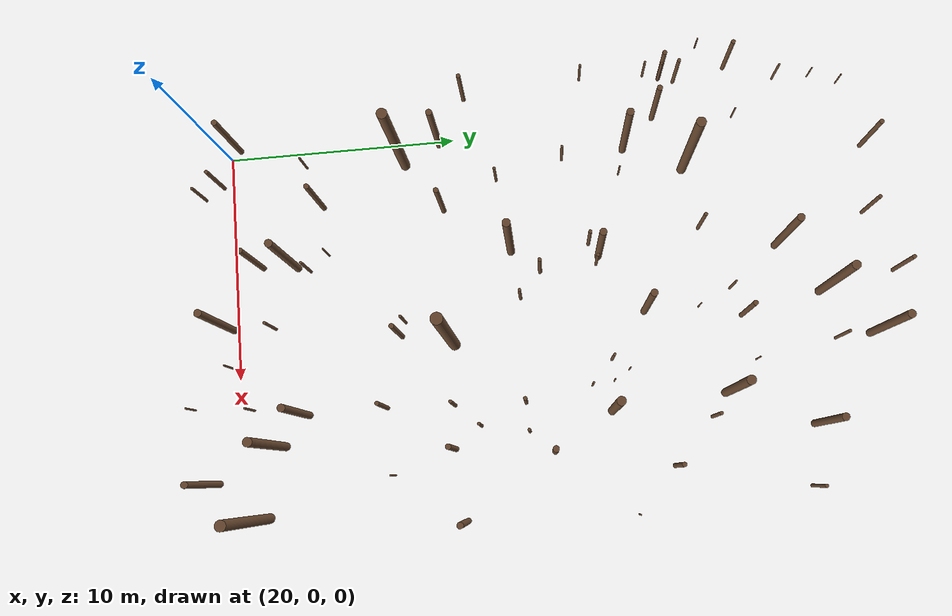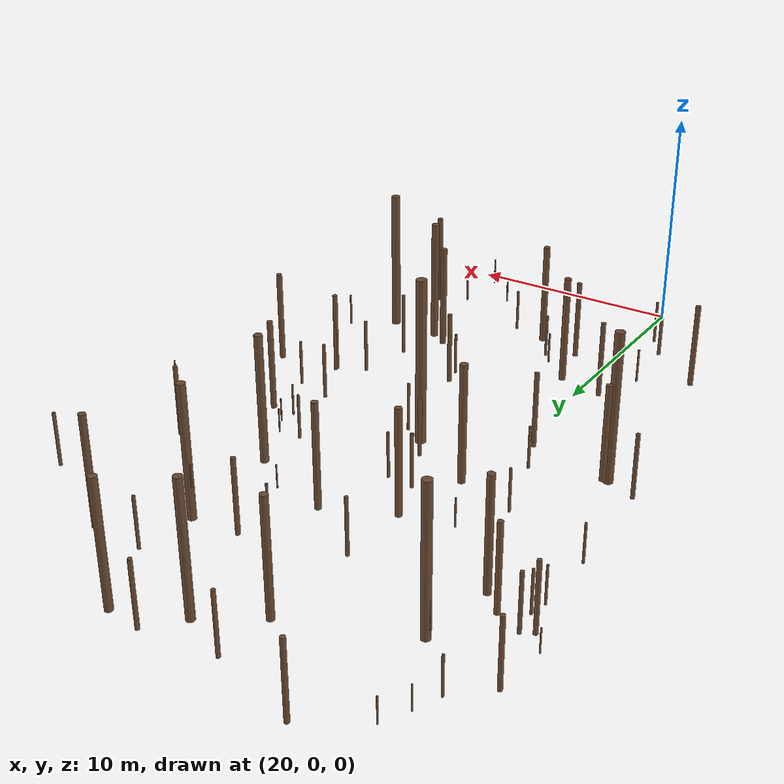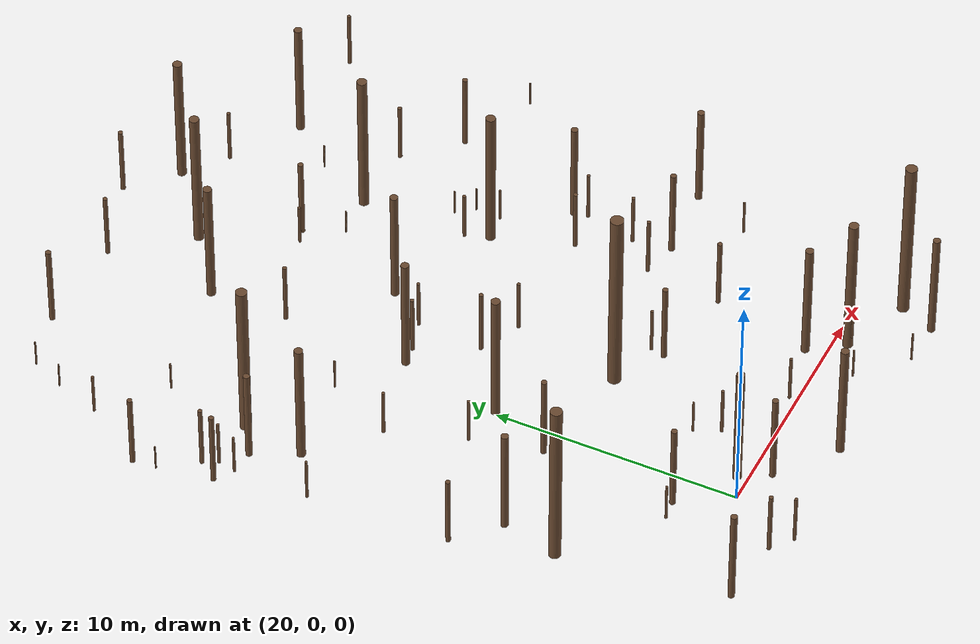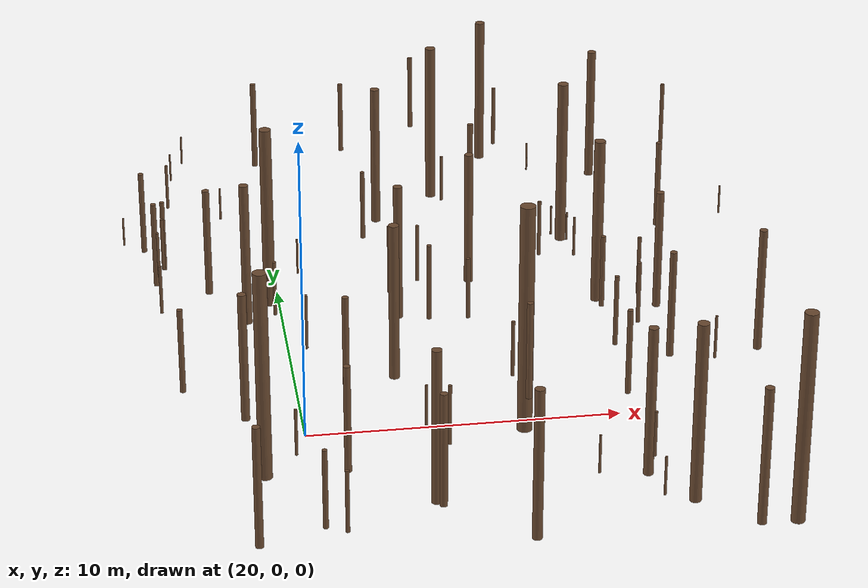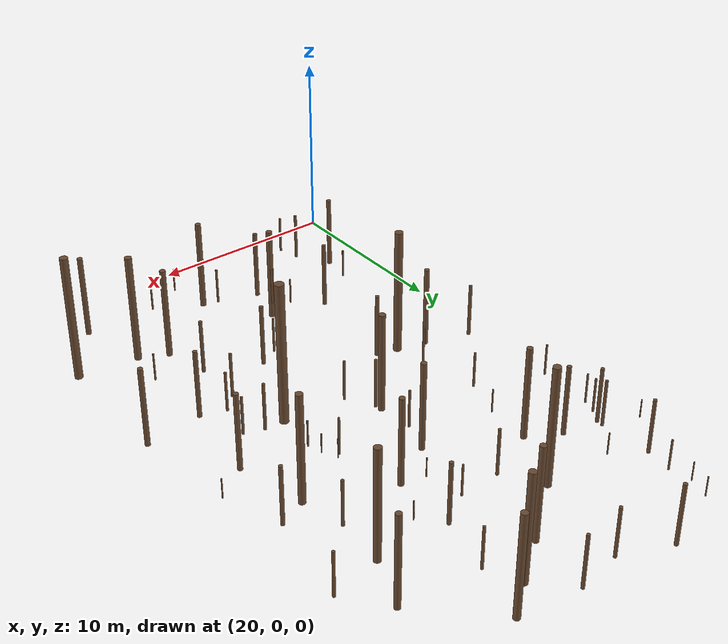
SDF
<sdf version="1.10">
 <model name="lehrforst_trees">
  <static>true</static>
  <link name="tree_0003">
   <pose>28.569 8.946 -1.156 3.14159 0 0</pose>
   <visual name="visual">
    <geometry><cylinder><radius>0.273</radius><length>8.736</length></cylinder></geometry>
    <material>
     <ambient>0.42 0.29 0.19 1</ambient>
     <diffuse>0.42 0.29 0.19 1</diffuse>
     <specular>0.42 0.29 0.19 1</specular>
    </material>
   </visual>
   <collision name="collision">
    <geometry><cylinder><radius>0.273</radius><length>8.736</length></cylinder></geometry>
   </collision>
  </link>
  <link name="tree_0011">
   <pose>19.209 7.13 -1.709 3.14159 0 0</pose>
   <visual name="visual">
    <geometry><cylinder><radius>0.246</radius><length>7.872</length></cylinder></geometry>
    <material>
     <ambient>0.42 0.29 0.19 1</ambient>
     <diffuse>0.42 0.29 0.19 1</diffuse>
     <specular>0.42 0.29 0.19 1</specular>
    </material>
   </visual>
   <collision name="collision">
    <geometry><cylinder><radius>0.246</radius><length>7.872</length></cylinder></geometry>
   </collision>
  </link>
  <link name="tree_0015">
   <pose>36.035 -0.141 -0.581 3.14159 0 0</pose>
   <visual name="visual">
    <geometry><cylinder><radius>0.239</radius><length>7.648</length></cylinder></geometry>
    <material>
     <ambient>0.42 0.29 0.19 1</ambient>
     <diffuse>0.42 0.29 0.19 1</diffuse>
     <specular>0.42 0.29 0.19 1</specular>
    </material>
   </visual>
   <collision name="collision">
    <geometry><cylinder><radius>0.239</radius><length>7.648</length></cylinder></geometry>
   </collision>
  </link>
  <link name="tree_0026">
   <pose>20.56 21.103 -2.404 3.14159 0 0</pose>
   <visual name="visual">
    <geometry><cylinder><radius>0.232</radius><length>7.424</length></cylinder></geometry>
    <material>
     <ambient>0.42 0.29 0.19 1</ambient>
     <diffuse>0.42 0.29 0.19 1</diffuse>
     <specular>0.42 0.29 0.19 1</specular>
    </material>
   </visual>
   <collision name="collision">
    <geometry><cylinder><radius>0.232</radius><length>7.424</length></cylinder></geometry>
   </collision>
  </link>
  <link name="tree_0085">
   <pose>32.181 21.663 -1.035 3.14159 0 0</pose>
   <visual name="visual">
    <geometry><cylinder><radius>0.207</radius><length>6.624</length></cylinder></geometry>
    <material>
     <ambient>0.42 0.29 0.19 1</ambient>
     <diffuse>0.42 0.29 0.19 1</diffuse>
     <specular>0.42 0.29 0.19 1</specular>
    </material>
   </visual>
   <collision name="collision">
    <geometry><cylinder><radius>0.207</radius><length>6.624</length></cylinder></geometry>
   </collision>
  </link>
  <link name="tree_0099">
   <pose>32.546 16.219 -1.05 3.14159 0 0</pose>
   <visual name="visual">
    <geometry><cylinder><radius>0.204</radius><length>6.528</length></cylinder></geometry>
    <material>
     <ambient>0.42 0.29 0.19 1</ambient>
     <diffuse>0.42 0.29 0.19 1</diffuse>
     <specular>0.42 0.29 0.19 1</specular>
    </material>
   </visual>
   <collision name="collision">
    <geometry><cylinder><radius>0.204</radius><length>6.528</length></cylinder></geometry>
   </collision>
  </link>
  <link name="tree_0100">
   <pose>32.823 0.866 -0.689 3.14159 0 0</pose>
   <visual name="visual">
    <geometry><cylinder><radius>0.204</radius><length>6.528</length></cylinder></geometry>
    <material>
     <ambient>0.42 0.29 0.19 1</ambient>
     <diffuse>0.42 0.29 0.19 1</diffuse>
     <specular>0.42 0.29 0.19 1</specular>
    </material>
   </visual>
   <collision name="collision">
    <geometry><cylinder><radius>0.204</radius><length>6.528</length></cylinder></geometry>
   </collision>
  </link>
  <link name="tree_0107">
   <pose>27.715 26.8 -1.274 3.14159 0 0</pose>
   <visual name="visual">
    <geometry><cylinder><radius>0.203</radius><length>6.496</length></cylinder></geometry>
    <material>
     <ambient>0.42 0.29 0.19 1</ambient>
     <diffuse>0.42 0.29 0.19 1</diffuse>
     <specular>0.42 0.29 0.19 1</specular>
    </material>
   </visual>
   <collision name="collision">
    <geometry><cylinder><radius>0.203</radius><length>6.496</length></cylinder></geometry>
   </collision>
  </link>
  <link name="tree_0154">
   <pose>24.334 12.093 -1.757 3.14159 0 0</pose>
   <visual name="visual">
    <geometry><cylinder><radius>0.190</radius><length>6.080</length></cylinder></geometry>
    <material>
     <ambient>0.42 0.29 0.19 1</ambient>
     <diffuse>0.42 0.29 0.19 1</diffuse>
     <specular>0.42 0.29 0.19 1</specular>
    </material>
   </visual>
   <collision name="collision">
    <geometry><cylinder><radius>0.190</radius><length>6.080</length></cylinder></geometry>
   </collision>
  </link>
  <link name="tree_0164">
   <pose>30.04 28.734 -0.795 3.14159 0 0</pose>
   <visual name="visual">
    <geometry><cylinder><radius>0.187</radius><length>5.984</length></cylinder></geometry>
    <material>
     <ambient>0.42 0.29 0.19 1</ambient>
     <diffuse>0.42 0.29 0.19 1</diffuse>
     <specular>0.42 0.29 0.19 1</specular>
    </material>
   </visual>
   <collision name="collision">
    <geometry><cylinder><radius>0.187</radius><length>5.984</length></cylinder></geometry>
   </collision>
  </link>
  <link name="tree_0205">
   <pose>19.484 18.128 -2.468 3.14159 0 0</pose>
   <visual name="visual">
    <geometry><cylinder><radius>0.179</radius><length>5.728</length></cylinder></geometry>
    <material>
     <ambient>0.42 0.29 0.19 1</ambient>
     <diffuse>0.42 0.29 0.19 1</diffuse>
     <specular>0.42 0.29 0.19 1</specular>
    </material>
   </visual>
   <collision name="collision">
    <geometry><cylinder><radius>0.179</radius><length>5.728</length></cylinder></geometry>
   </collision>
  </link>
  <link name="tree_0208">
   <pose>25.237 24.976 -1.773 3.14159 0 0</pose>
   <visual name="visual">
    <geometry><cylinder><radius>0.179</radius><length>5.728</length></cylinder></geometry>
    <material>
     <ambient>0.42 0.29 0.19 1</ambient>
     <diffuse>0.42 0.29 0.19 1</diffuse>
     <specular>0.42 0.29 0.19 1</specular>
    </material>
   </visual>
   <collision name="collision">
    <geometry><cylinder><radius>0.179</radius><length>5.728</length></cylinder></geometry>
   </collision>
  </link>
  <link name="tree_0231">
   <pose>24.409 1.859 -1.091 3.14159 0 0</pose>
   <visual name="visual">
    <geometry><cylinder><radius>0.176</radius><length>5.632</length></cylinder></geometry>
    <material>
     <ambient>0.42 0.29 0.19 1</ambient>
     <diffuse>0.42 0.29 0.19 1</diffuse>
     <specular>0.42 0.29 0.19 1</specular>
    </material>
   </visual>
   <collision name="collision">
    <geometry><cylinder><radius>0.176</radius><length>5.632</length></cylinder></geometry>
   </collision>
  </link>
  <link name="tree_0259">
   <pose>31.504 2.118 -0.859 3.14159 0 0</pose>
   <visual name="visual">
    <geometry><cylinder><radius>0.170</radius><length>5.440</length></cylinder></geometry>
    <material>
     <ambient>0.42 0.29 0.19 1</ambient>
     <diffuse>0.42 0.29 0.19 1</diffuse>
     <specular>0.42 0.29 0.19 1</specular>
    </material>
   </visual>
   <collision name="collision">
    <geometry><cylinder><radius>0.170</radius><length>5.440</length></cylinder></geometry>
   </collision>
  </link>
  <link name="tree_0263">
   <pose>27.186 -1.236 -0.91 3.14159 0 0</pose>
   <visual name="visual">
    <geometry><cylinder><radius>0.169</radius><length>5.408</length></cylinder></geometry>
    <material>
     <ambient>0.42 0.29 0.19 1</ambient>
     <diffuse>0.42 0.29 0.19 1</diffuse>
     <specular>0.42 0.29 0.19 1</specular>
    </material>
   </visual>
   <collision name="collision">
    <geometry><cylinder><radius>0.169</radius><length>5.408</length></cylinder></geometry>
   </collision>
  </link>
  <link name="tree_0270">
   <pose>25.022 16.303 -1.87 3.14159 0 0</pose>
   <visual name="visual">
    <geometry><cylinder><radius>0.168</radius><length>5.376</length></cylinder></geometry>
    <material>
     <ambient>0.42 0.29 0.19 1</ambient>
     <diffuse>0.42 0.29 0.19 1</diffuse>
     <specular>0.42 0.29 0.19 1</specular>
    </material>
   </visual>
   <collision name="collision">
    <geometry><cylinder><radius>0.168</radius><length>5.376</length></cylinder></geometry>
   </collision>
  </link>
  <link name="tree_0273">
   <pose>34.035 25.412 -0.66 3.14159 0 0</pose>
   <visual name="visual">
    <geometry><cylinder><radius>0.167</radius><length>5.344</length></cylinder></geometry>
    <material>
     <ambient>0.42 0.29 0.19 1</ambient>
     <diffuse>0.42 0.29 0.19 1</diffuse>
     <specular>0.42 0.29 0.19 1</specular>
    </material>
   </visual>
   <collision name="collision">
    <geometry><cylinder><radius>0.167</radius><length>5.344</length></cylinder></geometry>
   </collision>
  </link>
  <link name="tree_0281">
   <pose>27.969 18.211 -1.557 3.14159 0 0</pose>
   <visual name="visual">
    <geometry><cylinder><radius>0.165</radius><length>5.280</length></cylinder></geometry>
    <material>
     <ambient>0.42 0.29 0.19 1</ambient>
     <diffuse>0.42 0.29 0.19 1</diffuse>
     <specular>0.42 0.29 0.19 1</specular>
    </material>
   </visual>
   <collision name="collision">
    <geometry><cylinder><radius>0.165</radius><length>5.280</length></cylinder></geometry>
   </collision>
  </link>
  <link name="tree_0347">
   <pose>34.279 -2.021 -0.739 3.14159 0 0</pose>
   <visual name="visual">
    <geometry><cylinder><radius>0.153</radius><length>4.896</length></cylinder></geometry>
    <material>
     <ambient>0.42 0.29 0.19 1</ambient>
     <diffuse>0.42 0.29 0.19 1</diffuse>
     <specular>0.42 0.29 0.19 1</specular>
    </material>
   </visual>
   <collision name="collision">
    <geometry><cylinder><radius>0.153</radius><length>4.896</length></cylinder></geometry>
   </collision>
  </link>
  <link name="tree_0351">
   <pose>18.712 9.028 -1.942 3.14159 0 0</pose>
   <visual name="visual">
    <geometry><cylinder><radius>0.153</radius><length>4.896</length></cylinder></geometry>
    <material>
     <ambient>0.42 0.29 0.19 1</ambient>
     <diffuse>0.42 0.29 0.19 1</diffuse>
     <specular>0.42 0.29 0.19 1</specular>
    </material>
   </visual>
   <collision name="collision">
    <geometry><cylinder><radius>0.153</radius><length>4.896</length></cylinder></geometry>
   </collision>
  </link>
  <link name="tree_0394">
   <pose>36.95 9.149 -0.682 3.14159 0 0</pose>
   <visual name="visual">
    <geometry><cylinder><radius>0.145</radius><length>4.640</length></cylinder></geometry>
    <material>
     <ambient>0.42 0.29 0.19 1</ambient>
     <diffuse>0.42 0.29 0.19 1</diffuse>
     <specular>0.42 0.29 0.19 1</specular>
    </material>
   </visual>
   <collision name="collision">
    <geometry><cylinder><radius>0.145</radius><length>4.640</length></cylinder></geometry>
   </collision>
  </link>
  <link name="tree_0410">
   <pose>34.213 13.357 -0.952 3.14159 0 0</pose>
   <visual name="visual">
    <geometry><cylinder><radius>0.143</radius><length>4.576</length></cylinder></geometry>
    <material>
     <ambient>0.42 0.29 0.19 1</ambient>
     <diffuse>0.42 0.29 0.19 1</diffuse>
     <specular>0.42 0.29 0.19 1</specular>
    </material>
   </visual>
   <collision name="collision">
    <geometry><cylinder><radius>0.143</radius><length>4.576</length></cylinder></geometry>
   </collision>
  </link>
  <link name="tree_0454">
   <pose>18.416 -0.568 -1.404 3.14159 0 0</pose>
   <visual name="visual">
    <geometry><cylinder><radius>0.136</radius><length>4.352</length></cylinder></geometry>
    <material>
     <ambient>0.42 0.29 0.19 1</ambient>
     <diffuse>0.42 0.29 0.19 1</diffuse>
     <specular>0.42 0.29 0.19 1</specular>
    </material>
   </visual>
   <collision name="collision">
    <geometry><cylinder><radius>0.136</radius><length>4.352</length></cylinder></geometry>
   </collision>
  </link>
  <link name="tree_0459">
   <pose>18.152 19.706 -2.611 3.14159 0 0</pose>
   <visual name="visual">
    <geometry><cylinder><radius>0.135</radius><length>4.320</length></cylinder></geometry>
    <material>
     <ambient>0.42 0.29 0.19 1</ambient>
     <diffuse>0.42 0.29 0.19 1</diffuse>
     <specular>0.42 0.29 0.19 1</specular>
    </material>
   </visual>
   <collision name="collision">
    <geometry><cylinder><radius>0.135</radius><length>4.320</length></cylinder></geometry>
   </collision>
  </link>
  <link name="tree_0505">
   <pose>24.427 0.398 -1.107 3.14159 0 0</pose>
   <visual name="visual">
    <geometry><cylinder><radius>0.128</radius><length>4.096</length></cylinder></geometry>
    <material>
     <ambient>0.42 0.29 0.19 1</ambient>
     <diffuse>0.42 0.29 0.19 1</diffuse>
     <specular>0.42 0.29 0.19 1</specular>
    </material>
   </visual>
   <collision name="collision">
    <geometry><cylinder><radius>0.128</radius><length>4.096</length></cylinder></geometry>
   </collision>
  </link>
  <link name="tree_0519">
   <pose>33.703 8.857 -0.868 3.14159 0 0</pose>
   <visual name="visual">
    <geometry><cylinder><radius>0.126</radius><length>4.032</length></cylinder></geometry>
    <material>
     <ambient>0.42 0.29 0.19 1</ambient>
     <diffuse>0.42 0.29 0.19 1</diffuse>
     <specular>0.42 0.29 0.19 1</specular>
    </material>
   </visual>
   <collision name="collision">
    <geometry><cylinder><radius>0.126</radius><length>4.032</length></cylinder></geometry>
   </collision>
  </link>
  <link name="tree_0534">
   <pose>21.675 3.348 -1.422 3.14159 0 0</pose>
   <visual name="visual">
    <geometry><cylinder><radius>0.123</radius><length>3.936</length></cylinder></geometry>
    <material>
     <ambient>0.42 0.29 0.19 1</ambient>
     <diffuse>0.42 0.29 0.19 1</diffuse>
     <specular>0.42 0.29 0.19 1</specular>
    </material>
   </visual>
   <collision name="collision">
    <geometry><cylinder><radius>0.123</radius><length>3.936</length></cylinder></geometry>
   </collision>
  </link>
  <link name="tree_0545">
   <pose>22.259 9.05 -1.795 3.14159 0 0</pose>
   <visual name="visual">
    <geometry><cylinder><radius>0.120</radius><length>3.840</length></cylinder></geometry>
    <material>
     <ambient>0.42 0.29 0.19 1</ambient>
     <diffuse>0.42 0.29 0.19 1</diffuse>
     <specular>0.42 0.29 0.19 1</specular>
    </material>
   </visual>
   <collision name="collision">
    <geometry><cylinder><radius>0.120</radius><length>3.840</length></cylinder></geometry>
   </collision>
  </link>
  <link name="tree_0576">
   <pose>28.706 22.664 -1.463 3.14159 0 0</pose>
   <visual name="visual">
    <geometry><cylinder><radius>0.114</radius><length>3.648</length></cylinder></geometry>
    <material>
     <ambient>0.42 0.29 0.19 1</ambient>
     <diffuse>0.42 0.29 0.19 1</diffuse>
     <specular>0.42 0.29 0.19 1</specular>
    </material>
   </visual>
   <collision name="collision">
    <geometry><cylinder><radius>0.114</radius><length>3.648</length></cylinder></geometry>
   </collision>
  </link>
  <link name="tree_0582">
   <pose>28.302 6.736 -1.18 3.14159 0 0</pose>
   <visual name="visual">
    <geometry><cylinder><radius>0.114</radius><length>3.648</length></cylinder></geometry>
    <material>
     <ambient>0.42 0.29 0.19 1</ambient>
     <diffuse>0.42 0.29 0.19 1</diffuse>
     <specular>0.42 0.29 0.19 1</specular>
    </material>
   </visual>
   <collision name="collision">
    <geometry><cylinder><radius>0.114</radius><length>3.648</length></cylinder></geometry>
   </collision>
  </link>
  <link name="tree_0584">
   <pose>20.75 29.673 -2.186 3.14159 0 0</pose>
   <visual name="visual">
    <geometry><cylinder><radius>0.114</radius><length>3.648</length></cylinder></geometry>
    <material>
     <ambient>0.42 0.29 0.19 1</ambient>
     <diffuse>0.42 0.29 0.19 1</diffuse>
     <specular>0.42 0.29 0.19 1</specular>
    </material>
   </visual>
   <collision name="collision">
    <geometry><cylinder><radius>0.114</radius><length>3.648</length></cylinder></geometry>
   </collision>
  </link>
  <link name="tree_0639">
   <pose>35.35 18.68 -0.812 3.14159 0 0</pose>
   <visual name="visual">
    <geometry><cylinder><radius>0.107</radius><length>3.424</length></cylinder></geometry>
    <material>
     <ambient>0.42 0.29 0.19 1</ambient>
     <diffuse>0.42 0.29 0.19 1</diffuse>
     <specular>0.42 0.29 0.19 1</specular>
    </material>
   </visual>
   <collision name="collision">
    <geometry><cylinder><radius>0.107</radius><length>3.424</length></cylinder></geometry>
   </collision>
  </link>
  <link name="tree_0641">
   <pose>16.179 20.229 -2.845 3.14159 0 0</pose>
   <visual name="visual">
    <geometry><cylinder><radius>0.107</radius><length>3.424</length></cylinder></geometry>
    <material>
     <ambient>0.42 0.29 0.19 1</ambient>
     <diffuse>0.42 0.29 0.19 1</diffuse>
     <specular>0.42 0.29 0.19 1</specular>
    </material>
   </visual>
   <collision name="collision">
    <geometry><cylinder><radius>0.107</radius><length>3.424</length></cylinder></geometry>
   </collision>
  </link>
  <link name="tree_0653">
   <pose>15.845 23.576 -3.034 3.14159 0 0</pose>
   <visual name="visual">
    <geometry><cylinder><radius>0.105</radius><length>3.360</length></cylinder></geometry>
    <material>
     <ambient>0.42 0.29 0.19 1</ambient>
     <diffuse>0.42 0.29 0.19 1</diffuse>
     <specular>0.42 0.29 0.19 1</specular>
    </material>
   </visual>
   <collision name="collision">
    <geometry><cylinder><radius>0.105</radius><length>3.360</length></cylinder></geometry>
   </collision>
  </link>
  <link name="tree_0677">
   <pose>16.637 10.419 -2.268 3.14159 0 0</pose>
   <visual name="visual">
    <geometry><cylinder><radius>0.101</radius><length>3.232</length></cylinder></geometry>
    <material>
     <ambient>0.42 0.29 0.19 1</ambient>
     <diffuse>0.42 0.29 0.19 1</diffuse>
     <specular>0.42 0.29 0.19 1</specular>
    </material>
   </visual>
   <collision name="collision">
    <geometry><cylinder><radius>0.101</radius><length>3.232</length></cylinder></geometry>
   </collision>
  </link>
  <link name="tree_0682">
   <pose>31.574 5.897 -1.022 3.14159 0 0</pose>
   <visual name="visual">
    <geometry><cylinder><radius>0.099</radius><length>3.168</length></cylinder></geometry>
    <material>
     <ambient>0.42 0.29 0.19 1</ambient>
     <diffuse>0.42 0.29 0.19 1</diffuse>
     <specular>0.42 0.29 0.19 1</specular>
    </material>
   </visual>
   <collision name="collision">
    <geometry><cylinder><radius>0.099</radius><length>3.168</length></cylinder></geometry>
   </collision>
  </link>
  <link name="tree_0697">
   <pose>27.299 29.911 -1.198 3.14159 0 0</pose>
   <visual name="visual">
    <geometry><cylinder><radius>0.096</radius><length>3.072</length></cylinder></geometry>
    <material>
     <ambient>0.42 0.29 0.19 1</ambient>
     <diffuse>0.42 0.29 0.19 1</diffuse>
     <specular>0.42 0.29 0.19 1</specular>
    </material>
   </visual>
   <collision name="collision">
    <geometry><cylinder><radius>0.096</radius><length>3.072</length></cylinder></geometry>
   </collision>
  </link>
  <link name="tree_0719">
   <pose>25.787 13.408 -1.714 3.14159 0 0</pose>
   <visual name="visual">
    <geometry><cylinder><radius>0.092</radius><length>2.944</length></cylinder></geometry>
    <material>
     <ambient>0.42 0.29 0.19 1</ambient>
     <diffuse>0.42 0.29 0.19 1</diffuse>
     <specular>0.42 0.29 0.19 1</specular>
    </material>
   </visual>
   <collision name="collision">
    <geometry><cylinder><radius>0.092</radius><length>2.944</length></cylinder></geometry>
   </collision>
  </link>
  <link name="tree_0720">
   <pose>24.287 29.037 -1.775 3.14159 0 0</pose>
   <visual name="visual">
    <geometry><cylinder><radius>0.092</radius><length>2.944</length></cylinder></geometry>
    <material>
     <ambient>0.42 0.29 0.19 1</ambient>
     <diffuse>0.42 0.29 0.19 1</diffuse>
     <specular>0.42 0.29 0.19 1</specular>
    </material>
   </visual>
   <collision name="collision">
    <geometry><cylinder><radius>0.092</radius><length>2.944</length></cylinder></geometry>
   </collision>
  </link>
  <link name="tree_0732">
   <pose>16.533 20.898 -2.806 3.14159 0 0</pose>
   <visual name="visual">
    <geometry><cylinder><radius>0.089</radius><length>2.848</length></cylinder></geometry>
    <material>
     <ambient>0.42 0.29 0.19 1</ambient>
     <diffuse>0.42 0.29 0.19 1</diffuse>
     <specular>0.42 0.29 0.19 1</specular>
    </material>
   </visual>
   <collision name="collision">
    <geometry><cylinder><radius>0.089</radius><length>2.848</length></cylinder></geometry>
   </collision>
  </link>
  <link name="tree_0740">
   <pose>20.469 -1.185 -1.27 3.14159 0 0</pose>
   <visual name="visual">
    <geometry><cylinder><radius>0.088</radius><length>2.816</length></cylinder></geometry>
    <material>
     <ambient>0.42 0.29 0.19 1</ambient>
     <diffuse>0.42 0.29 0.19 1</diffuse>
     <specular>0.42 0.29 0.19 1</specular>
    </material>
   </visual>
   <collision name="collision">
    <geometry><cylinder><radius>0.088</radius><length>2.816</length></cylinder></geometry>
   </collision>
  </link>
  <link name="tree_0750">
   <pose>31.921 12.234 -1.122 3.14159 0 0</pose>
   <visual name="visual">
    <geometry><cylinder><radius>0.087</radius><length>2.784</length></cylinder></geometry>
    <material>
     <ambient>0.42 0.29 0.19 1</ambient>
     <diffuse>0.42 0.29 0.19 1</diffuse>
     <specular>0.42 0.29 0.19 1</specular>
    </material>
   </visual>
   <collision name="collision">
    <geometry><cylinder><radius>0.087</radius><length>2.784</length></cylinder></geometry>
   </collision>
  </link>
  <link name="tree_0756">
   <pose>24.274 21.16 -2.126 3.14159 0 0</pose>
   <visual name="visual">
    <geometry><cylinder><radius>0.087</radius><length>2.784</length></cylinder></geometry>
    <material>
     <ambient>0.42 0.29 0.19 1</ambient>
     <diffuse>0.42 0.29 0.19 1</diffuse>
     <specular>0.42 0.29 0.19 1</specular>
    </material>
   </visual>
   <collision name="collision">
    <geometry><cylinder><radius>0.087</radius><length>2.784</length></cylinder></geometry>
   </collision>
  </link>
  <link name="tree_0776">
   <pose>24.644 15.816 -1.886 3.14159 0 0</pose>
   <visual name="visual">
    <geometry><cylinder><radius>0.084</radius><length>2.688</length></cylinder></geometry>
    <material>
     <ambient>0.42 0.29 0.19 1</ambient>
     <diffuse>0.42 0.29 0.19 1</diffuse>
     <specular>0.42 0.29 0.19 1</specular>
    </material>
   </visual>
   <collision name="collision">
    <geometry><cylinder><radius>0.084</radius><length>2.688</length></cylinder></geometry>
   </collision>
  </link>
  <link name="tree_0783">
   <pose>31.758 9.007 -1.052 3.14159 0 0</pose>
   <visual name="visual">
    <geometry><cylinder><radius>0.083</radius><length>2.656</length></cylinder></geometry>
    <material>
     <ambient>0.42 0.29 0.19 1</ambient>
     <diffuse>0.42 0.29 0.19 1</diffuse>
     <specular>0.42 0.29 0.19 1</specular>
    </material>
   </visual>
   <collision name="collision">
    <geometry><cylinder><radius>0.083</radius><length>2.656</length></cylinder></geometry>
   </collision>
  </link>
  <link name="tree_0788">
   <pose>33.335 20.586 -1.021 3.14159 0 0</pose>
   <visual name="visual">
    <geometry><cylinder><radius>0.083</radius><length>2.656</length></cylinder></geometry>
    <material>
     <ambient>0.42 0.29 0.19 1</ambient>
     <diffuse>0.42 0.29 0.19 1</diffuse>
     <specular>0.42 0.29 0.19 1</specular>
    </material>
   </visual>
   <collision name="collision">
    <geometry><cylinder><radius>0.083</radius><length>2.656</length></cylinder></geometry>
   </collision>
  </link>
  <link name="tree_0816">
   <pose>36.776 24.527 -0.45 3.14159 0 0</pose>
   <visual name="visual">
    <geometry><cylinder><radius>0.079</radius><length>2.528</length></cylinder></geometry>
    <material>
     <ambient>0.42 0.29 0.19 1</ambient>
     <diffuse>0.42 0.29 0.19 1</diffuse>
     <specular>0.42 0.29 0.19 1</specular>
    </material>
   </visual>
   <collision name="collision">
    <geometry><cylinder><radius>0.079</radius><length>2.528</length></cylinder></geometry>
   </collision>
  </link>
  <link name="tree_0831">
   <pose>30.286 26.655 -1.068 3.14159 0 0</pose>
   <visual name="visual">
    <geometry><cylinder><radius>0.076</radius><length>2.432</length></cylinder></geometry>
    <material>
     <ambient>0.42 0.29 0.19 1</ambient>
     <diffuse>0.42 0.29 0.19 1</diffuse>
     <specular>0.42 0.29 0.19 1</specular>
    </material>
   </visual>
   <collision name="collision">
    <geometry><cylinder><radius>0.076</radius><length>2.432</length></cylinder></geometry>
   </collision>
  </link>
  <link name="tree_0840">
   <pose>27.053 12.389 -1.534 3.14159 0 0</pose>
   <visual name="visual">
    <geometry><cylinder><radius>0.074</radius><length>2.368</length></cylinder></geometry>
    <material>
     <ambient>0.42 0.29 0.19 1</ambient>
     <diffuse>0.42 0.29 0.19 1</diffuse>
     <specular>0.42 0.29 0.19 1</specular>
    </material>
   </visual>
   <collision name="collision">
    <geometry><cylinder><radius>0.074</radius><length>2.368</length></cylinder></geometry>
   </collision>
  </link>
  <link name="tree_0846">
   <pose>32.807 10.151 -0.996 3.14159 0 0</pose>
   <visual name="visual">
    <geometry><cylinder><radius>0.073</radius><length>2.336</length></cylinder></geometry>
    <material>
     <ambient>0.42 0.29 0.19 1</ambient>
     <diffuse>0.42 0.29 0.19 1</diffuse>
     <specular>0.42 0.29 0.19 1</specular>
    </material>
   </visual>
   <collision name="collision">
    <geometry><cylinder><radius>0.073</radius><length>2.336</length></cylinder></geometry>
   </collision>
  </link>
  <link name="tree_0870">
   <pose>33.261 12.293 -1.016 3.14159 0 0</pose>
   <visual name="visual">
    <geometry><cylinder><radius>0.070</radius><length>2.240</length></cylinder></geometry>
    <material>
     <ambient>0.42 0.29 0.19 1</ambient>
     <diffuse>0.42 0.29 0.19 1</diffuse>
     <specular>0.42 0.29 0.19 1</specular>
    </material>
   </visual>
   <collision name="collision">
    <geometry><cylinder><radius>0.070</radius><length>2.240</length></cylinder></geometry>
   </collision>
  </link>
  <link name="tree_0871">
   <pose>25.709 16.063 -1.825 3.14159 0 0</pose>
   <visual name="visual">
    <geometry><cylinder><radius>0.070</radius><length>2.240</length></cylinder></geometry>
    <material>
     <ambient>0.42 0.29 0.19 1</ambient>
     <diffuse>0.42 0.29 0.19 1</diffuse>
     <specular>0.42 0.29 0.19 1</specular>
    </material>
   </visual>
   <collision name="collision">
    <geometry><cylinder><radius>0.070</radius><length>2.240</length></cylinder></geometry>
   </collision>
  </link>
  <link name="tree_0878">
   <pose>21.076 -1.96 -1.298 3.14159 0 0</pose>
   <visual name="visual">
    <geometry><cylinder><radius>0.069</radius><length>2.208</length></cylinder></geometry>
    <material>
     <ambient>0.42 0.29 0.19 1</ambient>
     <diffuse>0.42 0.29 0.19 1</diffuse>
     <specular>0.42 0.29 0.19 1</specular>
    </material>
   </visual>
   <collision name="collision">
    <geometry><cylinder><radius>0.069</radius><length>2.208</length></cylinder></geometry>
   </collision>
  </link>
  <link name="tree_0893">
   <pose>24.972 2.795 -1.21 3.14159 0 0</pose>
   <visual name="visual">
    <geometry><cylinder><radius>0.068</radius><length>2.176</length></cylinder></geometry>
    <material>
     <ambient>0.42 0.29 0.19 1</ambient>
     <diffuse>0.42 0.29 0.19 1</diffuse>
     <specular>0.42 0.29 0.19 1</specular>
    </material>
   </visual>
   <collision name="collision">
    <geometry><cylinder><radius>0.068</radius><length>2.176</length></cylinder></geometry>
   </collision>
  </link>
  <link name="tree_0896">
   <pose>30.337 16.31 -1.227 3.14159 0 0</pose>
   <visual name="visual">
    <geometry><cylinder><radius>0.068</radius><length>2.176</length></cylinder></geometry>
    <material>
     <ambient>0.42 0.29 0.19 1</ambient>
     <diffuse>0.42 0.29 0.19 1</diffuse>
     <specular>0.42 0.29 0.19 1</specular>
    </material>
   </visual>
   <collision name="collision">
    <geometry><cylinder><radius>0.068</radius><length>2.176</length></cylinder></geometry>
   </collision>
  </link>
  <link name="tree_0902">
   <pose>20.303 14.946 -2.346 3.14159 0 0</pose>
   <visual name="visual">
    <geometry><cylinder><radius>0.067</radius><length>2.144</length></cylinder></geometry>
    <material>
     <ambient>0.42 0.29 0.19 1</ambient>
     <diffuse>0.42 0.29 0.19 1</diffuse>
     <specular>0.42 0.29 0.19 1</specular>
    </material>
   </visual>
   <collision name="collision">
    <geometry><cylinder><radius>0.067</radius><length>2.144</length></cylinder></geometry>
   </collision>
  </link>
  <link name="tree_0905">
   <pose>27.553 1.101 -1.056 3.14159 0 0</pose>
   <visual name="visual">
    <geometry><cylinder><radius>0.066</radius><length>2.112</length></cylinder></geometry>
    <material>
     <ambient>0.42 0.29 0.19 1</ambient>
     <diffuse>0.42 0.29 0.19 1</diffuse>
     <specular>0.42 0.29 0.19 1</specular>
    </material>
   </visual>
   <collision name="collision">
    <geometry><cylinder><radius>0.066</radius><length>2.112</length></cylinder></geometry>
   </collision>
  </link>
  <link name="tree_0911">
   <pose>21.134 11.71 -2.119 3.14159 0 0</pose>
   <visual name="visual">
    <geometry><cylinder><radius>0.066</radius><length>2.112</length></cylinder></geometry>
    <material>
     <ambient>0.42 0.29 0.19 1</ambient>
     <diffuse>0.42 0.29 0.19 1</diffuse>
     <specular>0.42 0.29 0.19 1</specular>
    </material>
   </visual>
   <collision name="collision">
    <geometry><cylinder><radius>0.066</radius><length>2.112</length></cylinder></geometry>
   </collision>
  </link>
  <link name="tree_0920">
   <pose>27.774 7.036 -1.219 3.14159 0 0</pose>
   <visual name="visual">
    <geometry><cylinder><radius>0.065</radius><length>2.080</length></cylinder></geometry>
    <material>
     <ambient>0.42 0.29 0.19 1</ambient>
     <diffuse>0.42 0.29 0.19 1</diffuse>
     <specular>0.42 0.29 0.19 1</specular>
    </material>
   </visual>
   <collision name="collision">
    <geometry><cylinder><radius>0.065</radius><length>2.080</length></cylinder></geometry>
   </collision>
  </link>
  <link name="tree_0922">
   <pose>16.468 20.111 -2.772 3.14159 0 0</pose>
   <visual name="visual">
    <geometry><cylinder><radius>0.065</radius><length>2.080</length></cylinder></geometry>
    <material>
     <ambient>0.42 0.29 0.19 1</ambient>
     <diffuse>0.42 0.29 0.19 1</diffuse>
     <specular>0.42 0.29 0.19 1</specular>
    </material>
   </visual>
   <collision name="collision">
    <geometry><cylinder><radius>0.065</radius><length>2.080</length></cylinder></geometry>
   </collision>
  </link>
  <link name="tree_0954">
   <pose>16.203 16.201 -2.738 3.14159 0 0</pose>
   <visual name="visual">
    <geometry><cylinder><radius>0.060</radius><length>1.920</length></cylinder></geometry>
    <material>
     <ambient>0.42 0.29 0.19 1</ambient>
     <diffuse>0.42 0.29 0.19 1</diffuse>
     <specular>0.42 0.29 0.19 1</specular>
    </material>
   </visual>
   <collision name="collision">
    <geometry><cylinder><radius>0.060</radius><length>1.920</length></cylinder></geometry>
   </collision>
  </link>
  <link name="tree_0974">
   <pose>27.489 22.14 -1.639 3.14159 0 0</pose>
   <visual name="visual">
    <geometry><cylinder><radius>0.058</radius><length>1.856</length></cylinder></geometry>
    <material>
     <ambient>0.42 0.29 0.19 1</ambient>
     <diffuse>0.42 0.29 0.19 1</diffuse>
     <specular>0.42 0.29 0.19 1</specular>
    </material>
   </visual>
   <collision name="collision">
    <geometry><cylinder><radius>0.058</radius><length>1.856</length></cylinder></geometry>
   </collision>
  </link>
  <link name="tree_0981">
   <pose>16.926 25.783 -2.981 3.14159 0 0</pose>
   <visual name="visual">
    <geometry><cylinder><radius>0.058</radius><length>1.856</length></cylinder></geometry>
    <material>
     <ambient>0.42 0.29 0.19 1</ambient>
     <diffuse>0.42 0.29 0.19 1</diffuse>
     <specular>0.42 0.29 0.19 1</specular>
    </material>
   </visual>
   <collision name="collision">
    <geometry><cylinder><radius>0.058</radius><length>1.856</length></cylinder></geometry>
   </collision>
  </link>
  <link name="tree_0989">
   <pose>16.26 19.345 -2.848 3.14159 0 0</pose>
   <visual name="visual">
    <geometry><cylinder><radius>0.057</radius><length>1.824</length></cylinder></geometry>
    <material>
     <ambient>0.42 0.29 0.19 1</ambient>
     <diffuse>0.42 0.29 0.19 1</diffuse>
     <specular>0.42 0.29 0.19 1</specular>
    </material>
   </visual>
   <collision name="collision">
    <geometry><cylinder><radius>0.057</radius><length>1.824</length></cylinder></geometry>
   </collision>
  </link>
  <link name="tree_1021">
   <pose>19.944 2.853 -1.488 3.14159 0 0</pose>
   <visual name="visual">
    <geometry><cylinder><radius>0.053</radius><length>1.696</length></cylinder></geometry>
    <material>
     <ambient>0.42 0.29 0.19 1</ambient>
     <diffuse>0.42 0.29 0.19 1</diffuse>
     <specular>0.42 0.29 0.19 1</specular>
    </material>
   </visual>
   <collision name="collision">
    <geometry><cylinder><radius>0.053</radius><length>1.696</length></cylinder></geometry>
   </collision>
  </link>
  <link name="tree_1050">
   <pose>31.212 0.079 -0.886 3.14159 0 0</pose>
   <visual name="visual">
    <geometry><cylinder><radius>0.051</radius><length>1.632</length></cylinder></geometry>
    <material>
     <ambient>0.42 0.29 0.19 1</ambient>
     <diffuse>0.42 0.29 0.19 1</diffuse>
     <specular>0.42 0.29 0.19 1</specular>
    </material>
   </visual>
   <collision name="collision">
    <geometry><cylinder><radius>0.051</radius><length>1.632</length></cylinder></geometry>
   </collision>
  </link>
  <link name="tree_1065">
   <pose>34.643 6.205 -0.845 3.14159 0 0</pose>
   <visual name="visual">
    <geometry><cylinder><radius>0.050</radius><length>1.600</length></cylinder></geometry>
    <material>
     <ambient>0.42 0.29 0.19 1</ambient>
     <diffuse>0.42 0.29 0.19 1</diffuse>
     <specular>0.42 0.29 0.19 1</specular>
    </material>
   </visual>
   <collision name="collision">
    <geometry><cylinder><radius>0.050</radius><length>1.600</length></cylinder></geometry>
   </collision>
  </link>
  <link name="tree_1078">
   <pose>24.335 3.723 -1.336 3.14159 0 0</pose>
   <visual name="visual">
    <geometry><cylinder><radius>0.048</radius><length>1.536</length></cylinder></geometry>
    <material>
     <ambient>0.42 0.29 0.19 1</ambient>
     <diffuse>0.42 0.29 0.19 1</diffuse>
     <specular>0.42 0.29 0.19 1</specular>
    </material>
   </visual>
   <collision name="collision">
    <geometry><cylinder><radius>0.048</radius><length>1.536</length></cylinder></geometry>
   </collision>
  </link>
  <link name="tree_1083">
   <pose>31.463 15.289 -1.157 3.14159 0 0</pose>
   <visual name="visual">
    <geometry><cylinder><radius>0.048</radius><length>1.536</length></cylinder></geometry>
    <material>
     <ambient>0.42 0.29 0.19 1</ambient>
     <diffuse>0.42 0.29 0.19 1</diffuse>
     <specular>0.42 0.29 0.19 1</specular>
    </material>
   </visual>
   <collision name="collision">
    <geometry><cylinder><radius>0.048</radius><length>1.536</length></cylinder></geometry>
   </collision>
  </link>
  <link name="tree_1124">
   <pose>21.39 17.573 -2.392 3.14159 0 0</pose>
   <visual name="visual">
    <geometry><cylinder><radius>0.044</radius><length>1.408</length></cylinder></geometry>
    <material>
     <ambient>0.42 0.29 0.19 1</ambient>
     <diffuse>0.42 0.29 0.19 1</diffuse>
     <specular>0.42 0.29 0.19 1</specular>
    </material>
   </visual>
   <collision name="collision">
    <geometry><cylinder><radius>0.044</radius><length>1.408</length></cylinder></geometry>
   </collision>
  </link>
  <link name="tree_1132">
   <pose>30.968 -2.512 -0.883 3.14159 0 0</pose>
   <visual name="visual">
    <geometry><cylinder><radius>0.043</radius><length>1.376</length></cylinder></geometry>
    <material>
     <ambient>0.42 0.29 0.19 1</ambient>
     <diffuse>0.42 0.29 0.19 1</diffuse>
     <specular>0.42 0.29 0.19 1</specular>
    </material>
   </visual>
   <collision name="collision">
    <geometry><cylinder><radius>0.043</radius><length>1.376</length></cylinder></geometry>
   </collision>
  </link>
  <link name="tree_1141">
   <pose>29.233 -0.806 -0.948 3.14159 0 0</pose>
   <visual name="visual">
    <geometry><cylinder><radius>0.043</radius><length>1.376</length></cylinder></geometry>
    <material>
     <ambient>0.42 0.29 0.19 1</ambient>
     <diffuse>0.42 0.29 0.19 1</diffuse>
     <specular>0.42 0.29 0.19 1</specular>
    </material>
   </visual>
   <collision name="collision">
    <geometry><cylinder><radius>0.043</radius><length>1.376</length></cylinder></geometry>
   </collision>
  </link>
  <link name="tree_1170">
   <pose>18.895 23.429 -2.781 3.14159 0 0</pose>
   <visual name="visual">
    <geometry><cylinder><radius>0.041</radius><length>1.312</length></cylinder></geometry>
    <material>
     <ambient>0.42 0.29 0.19 1</ambient>
     <diffuse>0.42 0.29 0.19 1</diffuse>
     <specular>0.42 0.29 0.19 1</specular>
    </material>
   </visual>
   <collision name="collision">
    <geometry><cylinder><radius>0.041</radius><length>1.312</length></cylinder></geometry>
   </collision>
  </link>
  <link name="tree_1221">
   <pose>17.677 28.696 -2.707 3.14159 0 0</pose>
   <visual name="visual">
    <geometry><cylinder><radius>0.037</radius><length>1.184</length></cylinder></geometry>
    <material>
     <ambient>0.42 0.29 0.19 1</ambient>
     <diffuse>0.42 0.29 0.19 1</diffuse>
     <specular>0.42 0.29 0.19 1</specular>
    </material>
   </visual>
   <collision name="collision">
    <geometry><cylinder><radius>0.037</radius><length>1.184</length></cylinder></geometry>
   </collision>
  </link>
  <link name="tree_1231">
   <pose>15.05 22.111 -3.108 3.14159 0 0</pose>
   <visual name="visual">
    <geometry><cylinder><radius>0.036</radius><length>1.152</length></cylinder></geometry>
    <material>
     <ambient>0.42 0.29 0.19 1</ambient>
     <diffuse>0.42 0.29 0.19 1</diffuse>
     <specular>0.42 0.29 0.19 1</specular>
    </material>
   </visual>
   <collision name="collision">
    <geometry><cylinder><radius>0.036</radius><length>1.152</length></cylinder></geometry>
   </collision>
  </link>
  <link name="tree_1234">
   <pose>30.911 17.005 -1.264 3.14159 0 0</pose>
   <visual name="visual">
    <geometry><cylinder><radius>0.036</radius><length>1.152</length></cylinder></geometry>
    <material>
     <ambient>0.42 0.29 0.19 1</ambient>
     <diffuse>0.42 0.29 0.19 1</diffuse>
     <specular>0.42 0.29 0.19 1</specular>
    </material>
   </visual>
   <collision name="collision">
    <geometry><cylinder><radius>0.036</radius><length>1.152</length></cylinder></geometry>
   </collision>
  </link>
  <link name="tree_1242">
   <pose>17.148 27.399 -2.872 3.14159 0 0</pose>
   <visual name="visual">
    <geometry><cylinder><radius>0.036</radius><length>1.152</length></cylinder></geometry>
    <material>
     <ambient>0.42 0.29 0.19 1</ambient>
     <diffuse>0.42 0.29 0.19 1</diffuse>
     <specular>0.42 0.29 0.19 1</specular>
    </material>
   </visual>
   <collision name="collision">
    <geometry><cylinder><radius>0.036</radius><length>1.152</length></cylinder></geometry>
   </collision>
  </link>
  <link name="tree_1248">
   <pose>31.366 16.276 -1.197 3.14159 0 0</pose>
   <visual name="visual">
    <geometry><cylinder><radius>0.035</radius><length>1.120</length></cylinder></geometry>
    <material>
     <ambient>0.42 0.29 0.19 1</ambient>
     <diffuse>0.42 0.29 0.19 1</diffuse>
     <specular>0.42 0.29 0.19 1</specular>
    </material>
   </visual>
   <collision name="collision">
    <geometry><cylinder><radius>0.035</radius><length>1.120</length></cylinder></geometry>
   </collision>
  </link>
  <link name="tree_1252">
   <pose>28.303 20.494 -1.501 3.14159 0 0</pose>
   <visual name="visual">
    <geometry><cylinder><radius>0.035</radius><length>1.120</length></cylinder></geometry>
    <material>
     <ambient>0.42 0.29 0.19 1</ambient>
     <diffuse>0.42 0.29 0.19 1</diffuse>
     <specular>0.42 0.29 0.19 1</specular>
    </material>
   </visual>
   <collision name="collision">
    <geometry><cylinder><radius>0.035</radius><length>1.120</length></cylinder></geometry>
   </collision>
  </link>
  <link name="tree_1258">
   <pose>37.276 16.72 -0.692 3.14159 0 0</pose>
   <visual name="visual">
    <geometry><cylinder><radius>0.035</radius><length>1.120</length></cylinder></geometry>
    <material>
     <ambient>0.42 0.29 0.19 1</ambient>
     <diffuse>0.42 0.29 0.19 1</diffuse>
     <specular>0.42 0.29 0.19 1</specular>
    </material>
   </visual>
   <collision name="collision">
    <geometry><cylinder><radius>0.035</radius><length>1.120</length></cylinder></geometry>
   </collision>
  </link>
  <link name="tree_1259">
   <pose>30.981 22.779 -1.206 3.14159 0 0</pose>
   <visual name="visual">
    <geometry><cylinder><radius>0.035</radius><length>1.120</length></cylinder></geometry>
    <material>
     <ambient>0.42 0.29 0.19 1</ambient>
     <diffuse>0.42 0.29 0.19 1</diffuse>
     <specular>0.42 0.29 0.19 1</specular>
    </material>
   </visual>
   <collision name="collision">
    <geometry><cylinder><radius>0.035</radius><length>1.120</length></cylinder></geometry>
   </collision>
  </link>
 </model>
</sdf>
